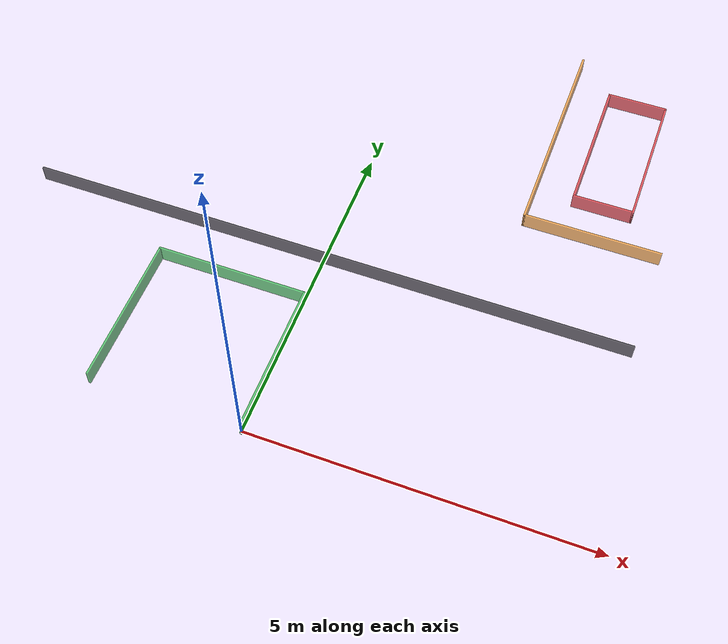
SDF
<?xml version='1.0'?>
<sdf version='1.8'>
  <model name='lunabotics_zones'>
    <pose>0 0 0 0 0 0</pose>
    <static>true</static>

    <!-- excavation obstacle divider -->
    <link name='excavation_obstacle_divider_divider'>
      <pose>0 3 0.08 0 0 0</pose>
      <visual name='excavation_obstacle_divider_divider_visual'>
        <geometry>
          <box>
            <size>9.17 0.03 0.25</size>
          </box>
        </geometry>
        <transparency>0.35</transparency>
        <!-- GUI-only annotation layer; see the header comment. -->
        <visibility_flags>1</visibility_flags>
        <material>
          <ambient>0.05 0.05 0.05 0.65</ambient>
          <diffuse>0.05 0.05 0.05 0.65</diffuse>
          <specular>0.05 0.05 0.05 1</specular>
          <emissive>0.02 0.02 0.02 1</emissive>
        </material>
      </visual>
    </link>

    <!-- starting zone -->
    <link name='starting_zone_start_w'>
      <pose>-2.25 1.125 0.08 0 0 0</pose>
      <visual name='starting_zone_start_w_visual'>
        <geometry>
          <box>
            <size>0.03 2.28 0.25</size>
          </box>
        </geometry>
        <transparency>0.35</transparency>
        <!-- GUI-only annotation layer; see the header comment. -->
        <visibility_flags>1</visibility_flags>
        <material>
          <ambient>0.1 0.7 0.2 0.65</ambient>
          <diffuse>0.1 0.7 0.2 0.65</diffuse>
          <specular>0.05 0.05 0.05 1</specular>
          <emissive>0.04 0.28 0.08 1</emissive>
        </material>
      </visual>
    </link>
    <link name='starting_zone_start_n'>
      <pose>-1.125 2.25 0.08 0 0 0</pose>
      <visual name='starting_zone_start_n_visual'>
        <geometry>
          <box>
            <size>2.28 0.03 0.25</size>
          </box>
        </geometry>
        <transparency>0.35</transparency>
        <!-- GUI-only annotation layer; see the header comment. -->
        <visibility_flags>1</visibility_flags>
        <material>
          <ambient>0.1 0.7 0.2 0.65</ambient>
          <diffuse>0.1 0.7 0.2 0.65</diffuse>
          <specular>0.05 0.05 0.05 1</specular>
          <emissive>0.04 0.28 0.08 1</emissive>
        </material>
      </visual>
    </link>
    <link name='starting_zone_start_e'>
      <pose>0 1.125 0.08 0 0 0</pose>
      <visual name='starting_zone_start_e_visual'>
        <geometry>
          <box>
            <size>0.03 2.28 0.25</size>
          </box>
        </geometry>
        <transparency>0.35</transparency>
        <!-- GUI-only annotation layer; see the header comment. -->
        <visibility_flags>1</visibility_flags>
        <material>
          <ambient>0.1 0.7 0.2 0.65</ambient>
          <diffuse>0.1 0.7 0.2 0.65</diffuse>
          <specular>0.05 0.05 0.05 1</specular>
          <emissive>0.04 0.28 0.08 1</emissive>
        </material>
      </visual>
    </link>

    <!-- construction zone -->
    <link name='construction_zone_cons_s'>
      <pose>3.545 4.69 0.08 0 0 0</pose>
      <visual name='construction_zone_cons_s_visual'>
        <geometry>
          <box>
            <size>2.08 0.03 0.25</size>
          </box>
        </geometry>
        <transparency>0.35</transparency>
        <!-- GUI-only annotation layer; see the header comment. -->
        <visibility_flags>1</visibility_flags>
        <material>
          <ambient>0.95 0.55 0.05 0.65</ambient>
          <diffuse>0.95 0.55 0.05 0.65</diffuse>
          <specular>0.05 0.05 0.05 1</specular>
          <emissive>0.38 0.22 0.02 1</emissive>
        </material>
      </visual>
    </link>
    <link name='construction_zone_cons_w'>
      <pose>2.52 6.395 0.08 0 0 0</pose>
      <visual name='construction_zone_cons_w_visual'>
        <geometry>
          <box>
            <size>0.03 3.44 0.25</size>
          </box>
        </geometry>
        <transparency>0.35</transparency>
        <!-- GUI-only annotation layer; see the header comment. -->
        <visibility_flags>1</visibility_flags>
        <material>
          <ambient>0.95 0.55 0.05 0.65</ambient>
          <diffuse>0.95 0.55 0.05 0.65</diffuse>
          <specular>0.05 0.05 0.05 1</specular>
          <emissive>0.38 0.22 0.02 1</emissive>
        </material>
      </visual>
    </link>

    <!-- berm target -->
    <link name='berm_target_berm_s'>
      <pose>3.56 5.3 0.08 0 0 0</pose>
      <visual name='berm_target_berm_s_visual'>
        <geometry>
          <box>
            <size>0.93 0.03 0.25</size>
          </box>
        </geometry>
        <transparency>0.35</transparency>
        <!-- GUI-only annotation layer; see the header comment. -->
        <visibility_flags>1</visibility_flags>
        <material>
          <ambient>0.85 0.05 0.05 0.65</ambient>
          <diffuse>0.85 0.05 0.05 0.65</diffuse>
          <specular>0.05 0.05 0.05 1</specular>
          <emissive>0.34 0.02 0.02 1</emissive>
        </material>
      </visual>
    </link>
    <link name='berm_target_berm_n'>
      <pose>3.56 7.5 0.08 0 0 0</pose>
      <visual name='berm_target_berm_n_visual'>
        <geometry>
          <box>
            <size>0.93 0.03 0.25</size>
          </box>
        </geometry>
        <transparency>0.35</transparency>
        <!-- GUI-only annotation layer; see the header comment. -->
        <visibility_flags>1</visibility_flags>
        <material>
          <ambient>0.85 0.05 0.05 0.65</ambient>
          <diffuse>0.85 0.05 0.05 0.65</diffuse>
          <specular>0.05 0.05 0.05 1</specular>
          <emissive>0.34 0.02 0.02 1</emissive>
        </material>
      </visual>
    </link>
    <link name='berm_target_berm_w'>
      <pose>3.11 6.4 0.08 0 0 0</pose>
      <visual name='berm_target_berm_w_visual'>
        <geometry>
          <box>
            <size>0.03 2.23 0.25</size>
          </box>
        </geometry>
        <transparency>0.35</transparency>
        <!-- GUI-only annotation layer; see the header comment. -->
        <visibility_flags>1</visibility_flags>
        <material>
          <ambient>0.85 0.05 0.05 0.65</ambient>
          <diffuse>0.85 0.05 0.05 0.65</diffuse>
          <specular>0.05 0.05 0.05 1</specular>
          <emissive>0.34 0.02 0.02 1</emissive>
        </material>
      </visual>
    </link>
    <link name='berm_target_berm_e'>
      <pose>4.01 6.4 0.08 0 0 0</pose>
      <visual name='berm_target_berm_e_visual'>
        <geometry>
          <box>
            <size>0.03 2.23 0.25</size>
          </box>
        </geometry>
        <transparency>0.35</transparency>
        <!-- GUI-only annotation layer; see the header comment. -->
        <visibility_flags>1</visibility_flags>
        <material>
          <ambient>0.85 0.05 0.05 0.65</ambient>
          <diffuse>0.85 0.05 0.05 0.65</diffuse>
          <specular>0.05 0.05 0.05 1</specular>
          <emissive>0.34 0.02 0.02 1</emissive>
        </material>
      </visual>
    </link>

  </model>
</sdf>
